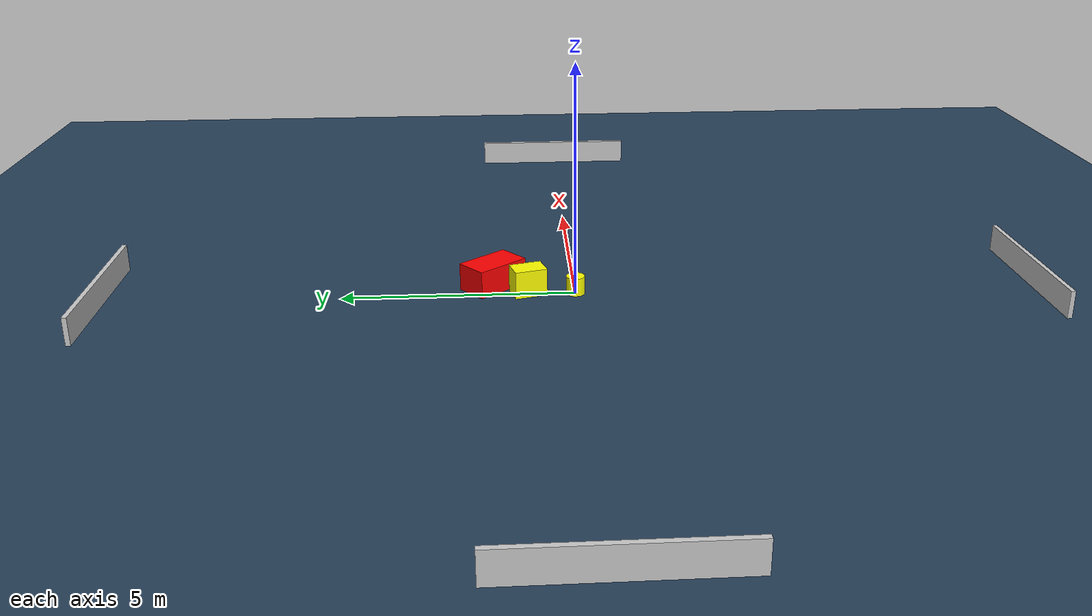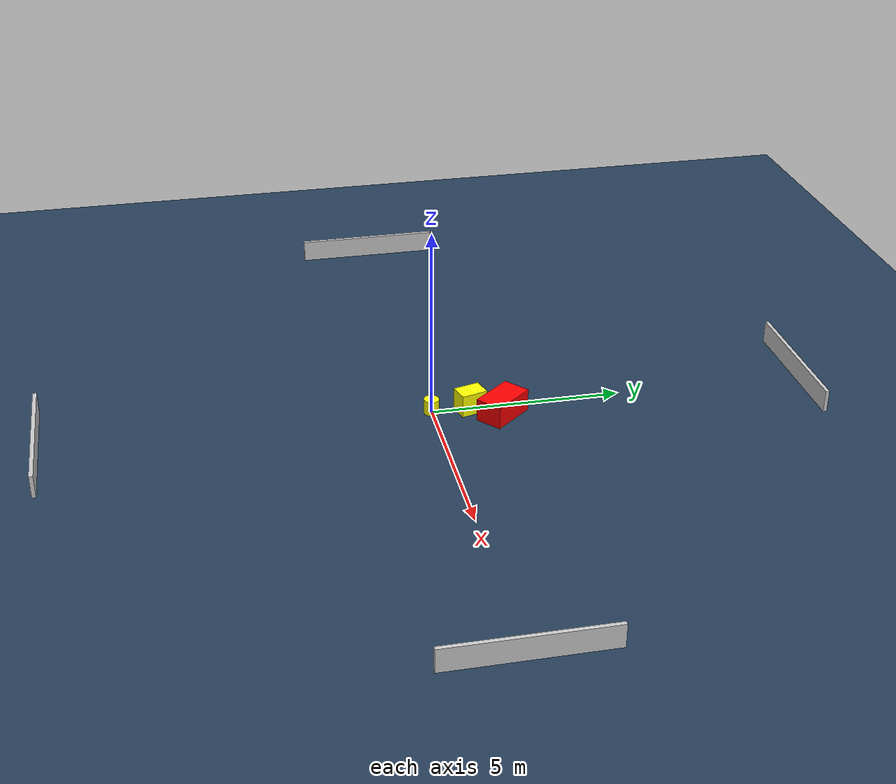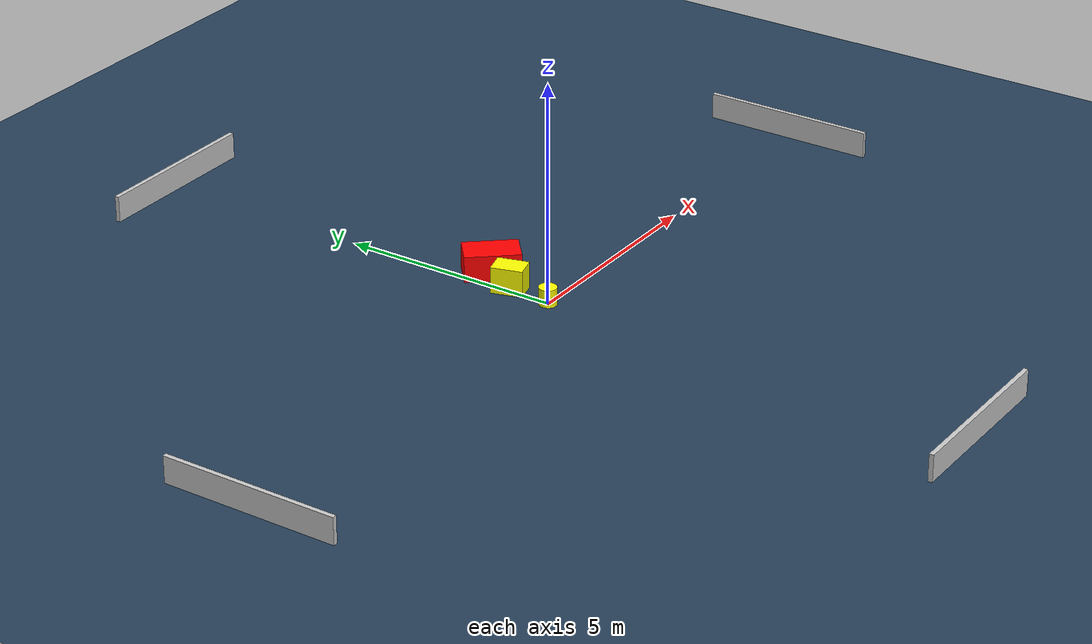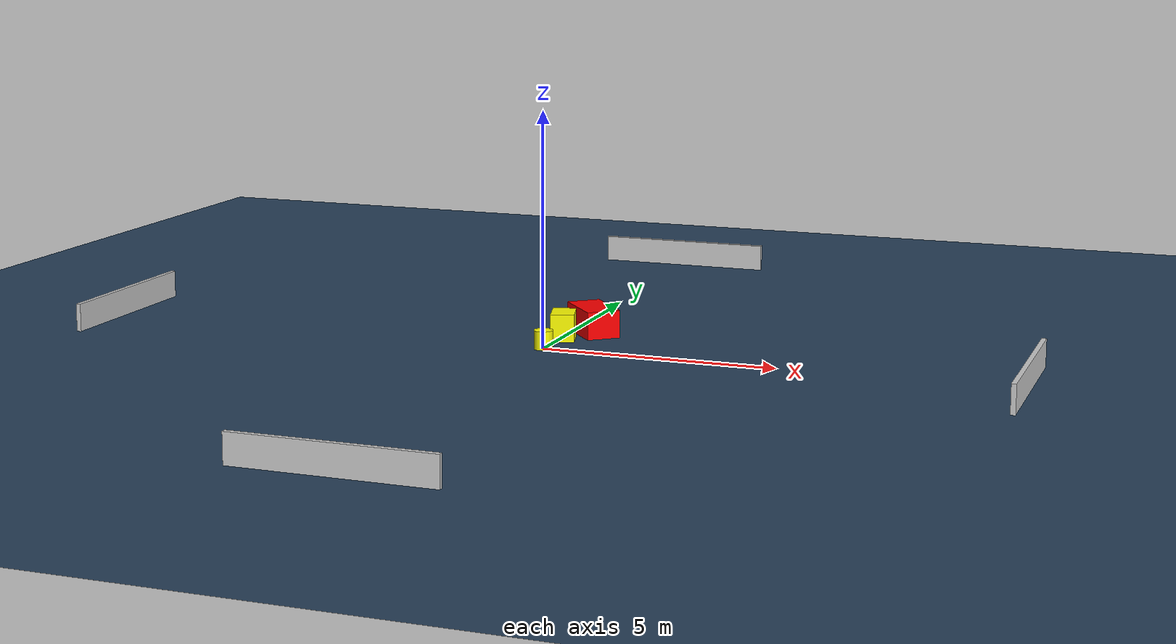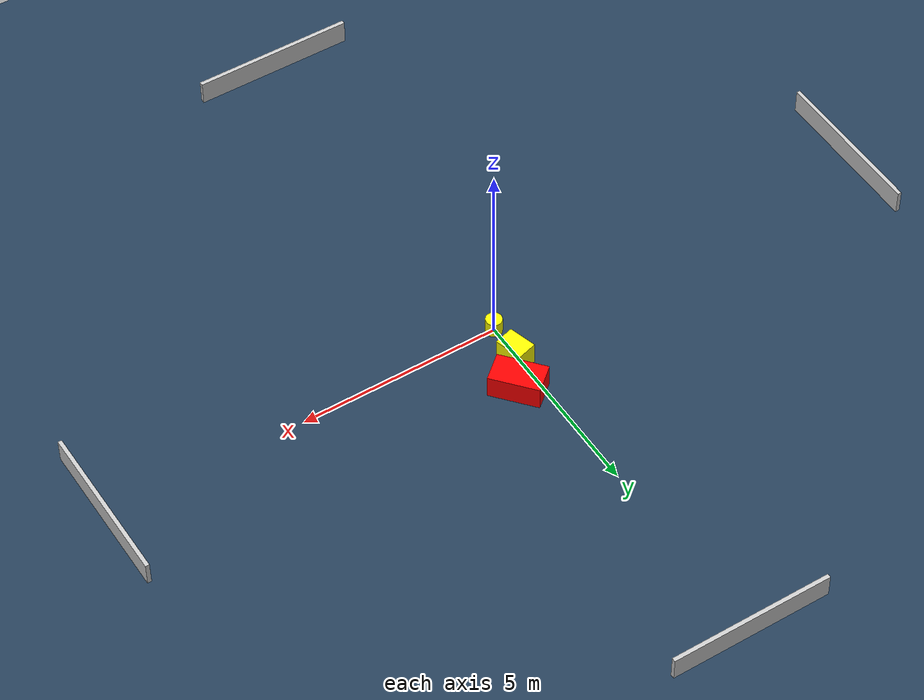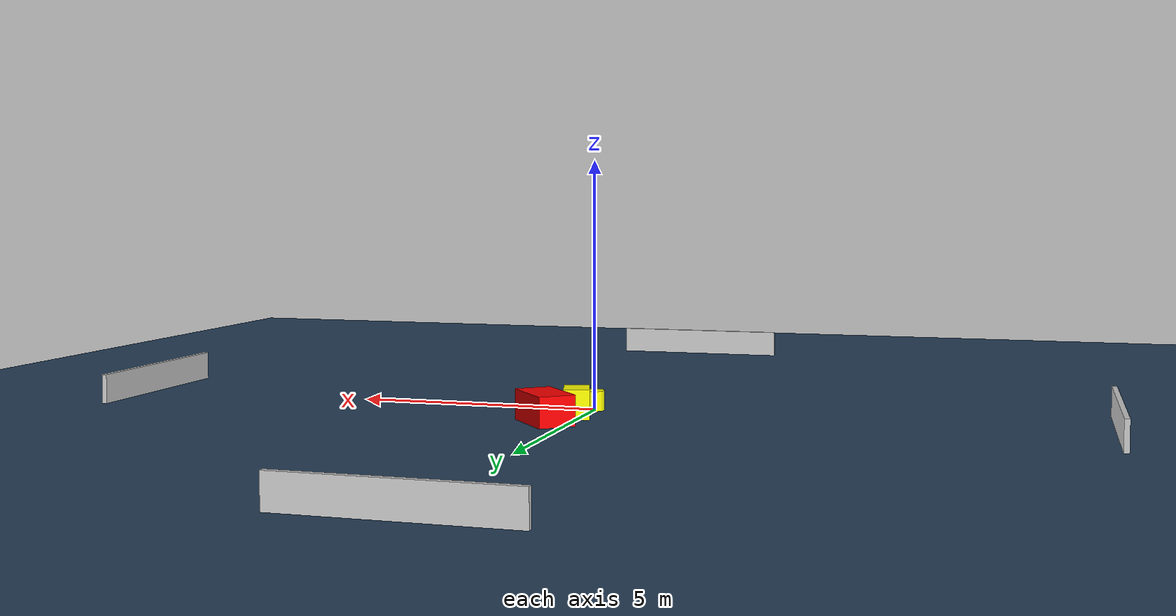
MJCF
<?xml version="1.0" ?>
<mujoco model="generated_environment">
  <option timestep="0.01" integrator="RK4" cone="elliptic"/>
  <default>
    <geom density="1"/>
  </default>
  <asset>
    <texture builtin="gradient" height="3072" name="skybox" rgb1="0.3 0.5 0.7" rgb2="0 0 0" type="skybox" width="512"/>
    <texture builtin="checker" height="300" name="groundplane" rgb1="0.2 0.3 0.4" rgb2="0.1 0.2 0.3" type="2d" width="300"/>
    <material name="groundplane" reflectance="0.2" texrepeat="5 5" texture="groundplane"/>
  </asset>
  <worldbody>
    <light dir="0 0 -1" directional="true" pos="0 0 1.5"/>
    <geom condim="3" friction="0.5 0.005 0.001" material="groundplane" name="floor" pos="0 0 0" size="0 0 0.05" type="plane"/>
    <body name="walls">
      <geom name="wall_1" condim="4" pos="-10.0 0.0 0.3" rgba="0.800000011920929 0.800000011920929 0.800000011920929 1.0" size="0.05 2.0 0.3" type="box"/>
      <geom name="wall_2" condim="4" pos="10.0 0.0 0.3" rgba="0.800000011920929 0.800000011920929 0.800000011920929 1.0" size="0.05 2.0 0.3" type="box"/>
      <geom name="wall_3" condim="4" pos="0.0 -10.0 0.3" rgba="0.800000011920929 0.800000011920929 0.800000011920929 1.0" size="2.0 0.05 0.3" type="box"/>
      <geom name="wall_4" condim="4" pos="0.0 10.0 0.3" rgba="0.800000011920929 0.800000011920929 0.800000011920929 1.0" size="2.0 0.05 0.3" type="box"/>
    </body>
    <body name="robot">
      <joint name="joint_x" type="slide" pos="0 0 0" axis="1 0 0"/>
      <joint name="joint_y" type="slide" pos="0 0 0" axis="0 1 0"/>
      <geom name="robot" type="cylinder" pos="0.0 0.0 0.2" size="0.2 0.2 0.0" mass="5.0" friction="1.0 0.005 0.0001" condim="4" rgba="1.0 1.0 0.0 1.0"/>
    </body>
    <body name="obstacle_1_movable">
      <geom name="obstacle_1_movable" condim="4" pos="0.07485894692689796 1.010335062492756 0.3" euler="0 0 15.686686766688762" friction="0.0 0.005 0.001" rgba="1.0 1.0 0.0 1.0" size="0.25133035745574545 0.35232375856972353 0.3" type="box" mass="0.1"/>
      <joint type="free"/>
    </body>
    <body name="obstacle_2_static">
      <geom name="obstacle_2_static" condim="4" pos="0.48386006984633473 1.7645701413707848 0.3" euler="0 0 310.296529637157" friction="0.0 0.005 0.001" rgba="1.0 0.0 0.0 1.0" size="0.6170403900579464 0.3676917860577026 0.3" type="box"/>
    </body>
  </worldbody>
  <actuator>
    <motor name="actuator_x" joint="joint_x" gear="1" ctrlrange="-1 1"/>
    <motor name="actuator_y" joint="joint_y" gear="1" ctrlrange="-1 1"/>
  </actuator>
</mujoco>
